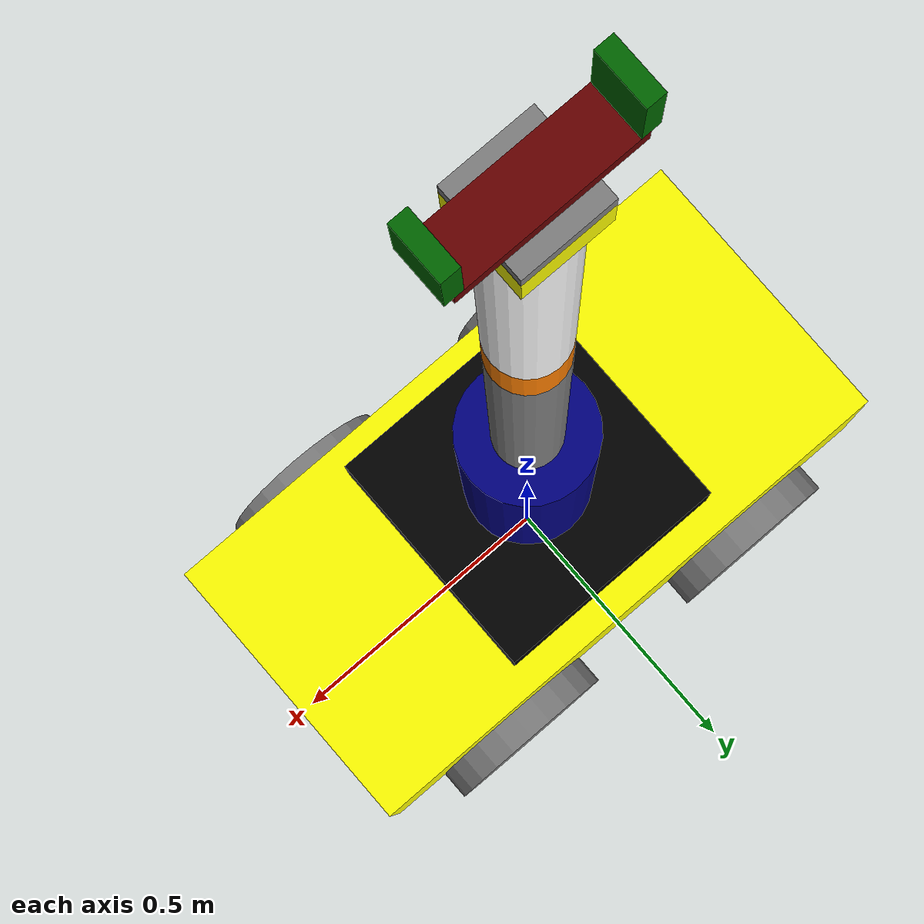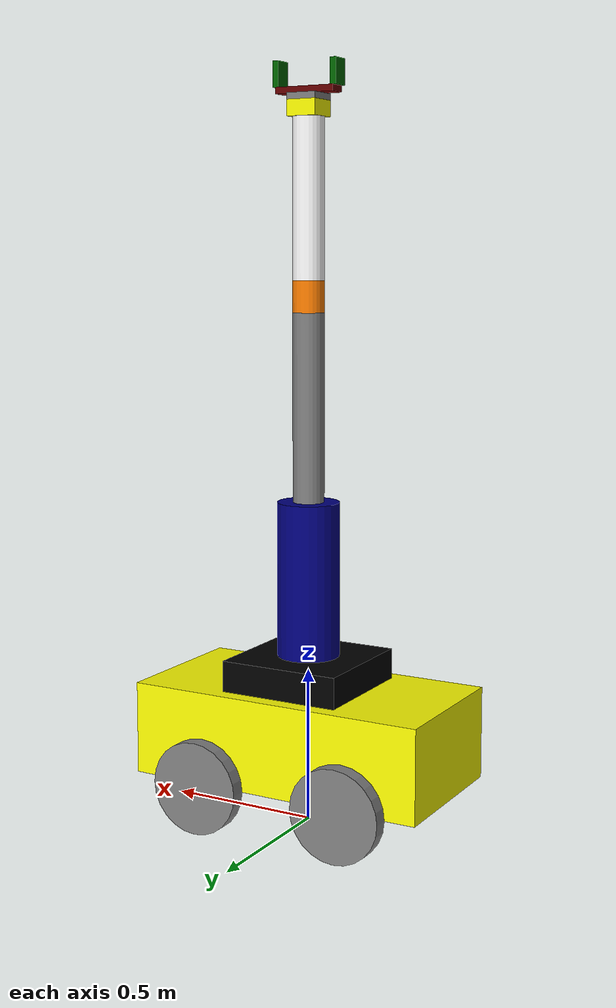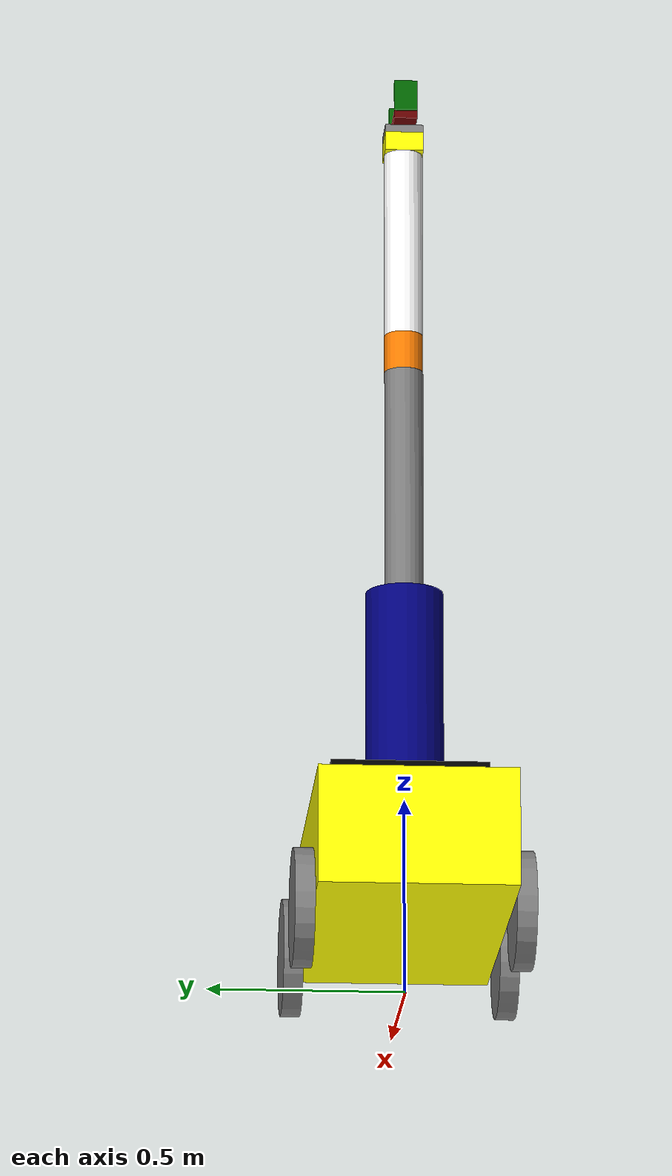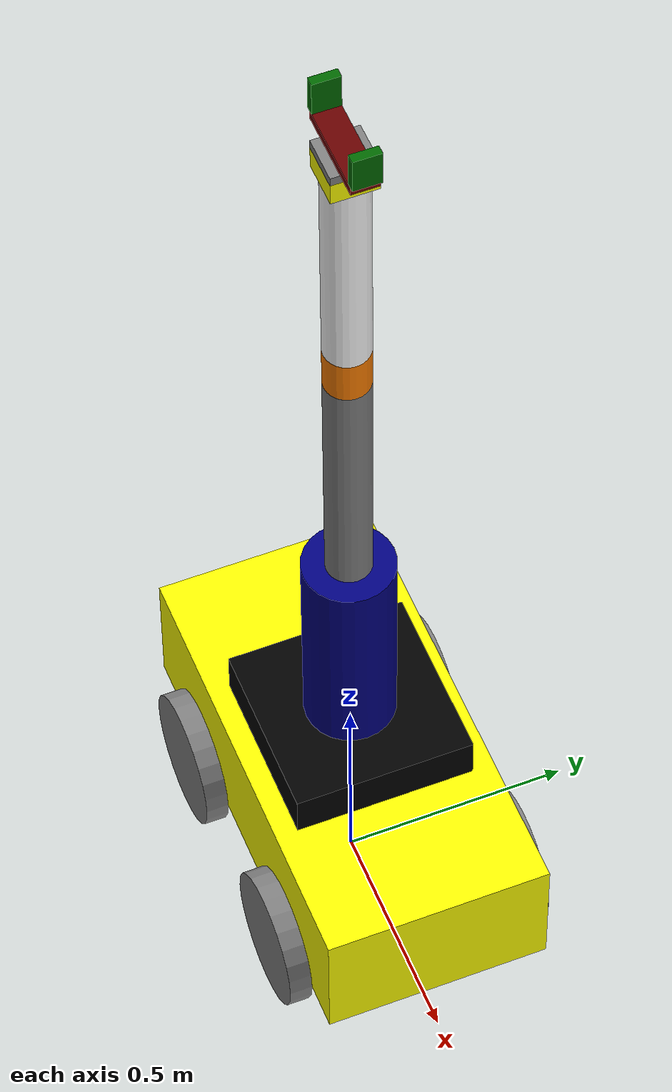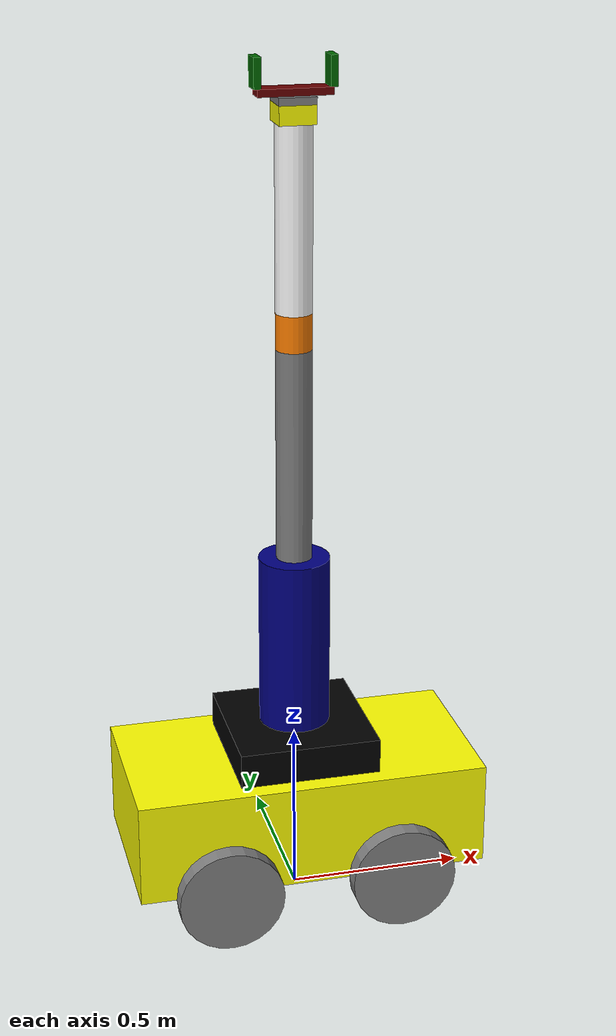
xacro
<?xml version="1.0"?>
<robot xmlns:xacro="http://www.ros.org/wiki/xacro" name="my_platform">
    <xacro:arg name="initial_positions_file" default="initial_positions.yaml" />

    <!-- Import my_platform urdf file -->
    <xacro:include filename="$(find my_robot_description)/urdf/platform.urdf.xacro" />

    <!-- Import control_xacro -->
    <xacro:include filename="my_platform.ros2_control.xacro" />

    <xacro:my_platform_ros2_control name="FakeSystem"
        initial_positions_file="$(arg initial_positions_file)" />

</robot>

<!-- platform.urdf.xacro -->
<robot name="my_platform" xmlns:xacro="http://www.ros.org/wiki/xacro">
    <xacro:include filename="inertia.urdf.xacro" />
    <xacro:include filename="mtl.urdf.xacro" />
    <xacro:include filename="arm.urdf.xacro" />
    <xacro:include filename="gripper.urdf.xacro" />
    <xacro:include filename="mobile_base.urdf.xacro" />

    <!-- Connect the gripper to ef -->
    <joint name="gripper_base_joint" type="fixed">
        <parent link="tool_link" />
        <child link="gripper_base_link" />
        <origin xyz="0 0 0" rpy="0 0 0" />
    </joint>

    <!-- Connect the arm to the base -->
    <joint name="arm_base_joint" type="fixed">
        <parent link="mobile_base_link" />
        <child link="arm_base_link" />
        <origin xyz="0 0 0.3" rpy="0 0 0" />
    </joint>
</robot>

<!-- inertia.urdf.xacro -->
<robot xmlns:xacro="http://www.ros.org/wiki/xacro">

    <xacro:macro name="box_inertia" params="m x y z o_xyz o_rpy">
        <inertial>
            <mass value="${m}" />
            <origin xyz="${o_xyz}" rpy="${o_rpy}" />
            <inertia ixx="${(m/12) * (y*y + z*z)}" ixy="0" ixz="0"
                iyy="${(m/12) * (x*x + z*z)}" iyz="0"
                izz="${(m/12) * (x*x + y*y)}" />
        </inertial>
    </xacro:macro>

    <xacro:macro name="cylinder_inertia" params="m r l o_xyz o_rpy">
        <inertial>
            <mass value="${m}" />
            <origin xyz="${o_xyz}" rpy="${o_rpy}" />
            <inertia ixx="${(m/12) * (3*r*r + l*l)}" ixy="0" ixz="0"
                iyy="${(m/12) * (3*r*r + l*l)}" iyz="0"
                izz="${(m/2) * (r*r)}" />
        </inertial>
    </xacro:macro>

    <xacro:macro name="sphere_inertia" params="m r o_xyz o_rpy">
        <inertial>
            <mass value="${m}" />
            <origin xyz="${o_xyz}" rpy="${o_rpy}" />
            <inertia ixx="${(2/5) * m * r * r}" ixy="0" ixz="0"
                iyy="${(2/5) * m * r * r}" iyz="0"
                izz="${(2/5) * m * r * r}" />
        </inertial>
    </xacro:macro>

</robot>

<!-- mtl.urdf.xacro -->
<robot xmlns:xacro="http://www.ros.org/wiki/xacro">

    <material name="blue">
        <color rgba="0 0 0.5 1" />
    </material>

    <material name="grey">
        <color rgba="0.5 0.5 0.5 1" />
    </material>

    <material name="orange">
        <color rgba="1.0 0.5 0 1" />
    </material>

    <material name="yellow">
        <color rgba="1.0 1.0 0 1" />
    </material>

    <material name="white">
        <color rgba="1.0 1.0 1.0 1" />
    </material>

    <material name="black">
        <color rgba="0.0 0.0 0.0 1" />
    </material>

    <material name="dark_red">
        <color rgba="0.4 0 0 1.0" />
    </material>

    <material name="dark_green">
        <color rgba="0.0 0.4 0 1.0" />
    </material>

</robot>

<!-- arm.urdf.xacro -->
<robot xmlns:xacro="http://www.ros.org/wiki/xacro">

    <!-- Base Link-->
    <link name="arm_base_link">
        <visual>
            <geometry>
                <box size="0.4 0.4 0.1" />
            </geometry>
            <origin xyz="0 0 0.05" rpy="0 0 0" />
            <material name="black" />
        </visual>
        <collision>
            <geometry>
                <box size="0.4 0.4 0.1" />
            </geometry>
            <origin xyz="0 0 0.05" rpy="0 0 0" />
        </collision>
        <xacro:box_inertia m="2.0" x="0.4" y="0.4"
            z="0.1"
            o_xyz="0 0 0.05" o_rpy="0 0 0" />
    </link>

    <!-- Shoulder link -->
    <link name="shoulder_link">
        <visual>
            <geometry>
                <cylinder length="0.5" radius="0.1" />
            </geometry>
            <origin xyz="0 0 0.25" rpy="0 0 0" />
            <material name="blue" />
        </visual>
        <collision>
            <geometry>
                <box size="0.2 0.2 0.5" />
            </geometry>
            <origin xyz="0 0 0.25" rpy="0 0 0" />
        </collision>
        <xacro:cylinder_inertia m="1.0" r="0.1" l="0.5"
            o_xyz="0 0 0.25" o_rpy="0 0 0" />
    </link>
    <joint name="joint1" type="revolute">
        <parent link="arm_base_link" />
        <child link="shoulder_link" />
        <origin xyz="0 0 0.1" rpy="0 0 0" />
        <axis xyz="0 0 1" />
        <limit effort="100" velocity="1.0" lower="-3.14" upper="3.14" />
    </joint>

    <!-- Arm link -->
    <link name="arm_link">
        <visual>
            <geometry>
                <cylinder radius="0.05" length="0.6" />
            </geometry>
            <origin xyz="0 0 0.3" rpy="0 0 0" />
            <material name="grey" />
        </visual>
        <collision>
            <geometry>
                <box size="0.1 0.1 0.6" />
            </geometry>
            <origin xyz="0 0 0.3" rpy="0 0 0" />
        </collision>
        <xacro:cylinder_inertia m="0.5" r="0.05" l="0.6"
            o_xyz="0 0 0.3" o_rpy="0 0 0" />
    </link>
    <joint name="joint2" type="revolute">
        <parent link="shoulder_link" />
        <child link="arm_link" />
        <axis xyz="0 1 0" />
        <origin xyz="0 0 0.5" rpy="0 0 0" />
        <limit effort="100" velocity="1.0" lower="0.0" upper="2.5" />
    </joint>

    <!-- Elbow link -->
    <link name="elbow_link">
        <visual>
            <geometry>
                <cylinder radius="0.05" length="0.1" />
            </geometry>
            <origin xyz="0 0 0.05" rpy="0 0 0" />
            <material name="orange" />
        </visual>
        <collision>
            <geometry>
                <box size="0.1 0.1 0.1" />
            </geometry>
            <origin xyz="0 0 0.05" rpy="0 0 0" />
        </collision>
        <xacro:cylinder_inertia m="0.2" r="0.05" l="0.1"
            o_xyz="0 0 0.05" o_rpy="0 0 0" />
    </link>
    <joint name="joint3" type="revolute">
        <parent link="arm_link" />
        <child link="elbow_link" />
        <axis xyz="0 1 0" />
        <origin xyz="0 0 0.6" rpy="0 0 0" />
        <limit effort="100" velocity="1.0" lower="0.0" upper="2.5" />
    </joint>

    <!-- Forearm link-->
    <link name="forearm_link">
        <visual>
            <geometry>
                <cylinder radius="0.05" length="0.5" />
            </geometry>
            <origin xyz="0 0 0.25" rpy="0 0 0" />
            <material name="white" />
        </visual>
        <collision>
            <geometry>
                <box size="0.1 0.1 0.5" />
            </geometry>
            <origin xyz="0 0 0.25" rpy="0 0 0" />
        </collision>
        <xacro:cylinder_inertia m="0.3" r="0.05" l="0.5"
            o_xyz="0 0 0.25" o_rpy="0 0 0" />
    </link>
    <joint name="joint4" type="revolute">
        <parent link="elbow_link" />
        <child link="forearm_link" />
        <axis xyz="0 0 1" />
        <origin xyz="0 0 0.1" rpy="0 0 0" />
        <limit effort="100" velocity="1.0" lower="-3.14" upper="3.14" />
    </joint>

    <!-- Wrist link -->
    <link name="wrist_link">
        <visual>
            <geometry>
                <box size="0.1 0.1 0.05" />
            </geometry>
            <origin xyz="0 0 0.025" rpy="0 0 0" />
            <material name="yellow" />
        </visual>
        <collision>
            <geometry>
                <box size="0.1 0.1 0.05" />
            </geometry>
            <origin xyz="0 0 0.025" rpy="0 0 0" />
        </collision>
        <xacro:box_inertia m="0.1" x="0.1" y="0.1"
            z="0.05"
            o_xyz="0 0 0.025" o_rpy="0 0 0" />
    </link>
    <joint name="joint5" type="revolute">
        <parent link="forearm_link" />
        <child link="wrist_link" />
        <axis xyz="0 1 0" />
        <origin xyz="0 0 0.5" rpy="0 0 0" />
        <limit effort="100" velocity="1.0" lower="-1.57" upper="1.57" />
    </joint>

    <!-- hand link -->
    <link name="hand_link">
        <visual>
            <geometry>
                <box size="0.1 0.1 0.02" />
            </geometry>
            <origin xyz="0 0 0.01" rpy="0 0 0" />
            <material name="grey" />
        </visual>
        <collision>
            <geometry>
                <box size="0.1 0.1 0.02" />
            </geometry>
            <origin xyz="0 0 0.01" rpy="0 0 0" />
        </collision>
        <xacro:box_inertia m="0.05" x="0.1" y="0.1"
            z="0.02"
            o_xyz="0 0 0.01" o_rpy="0 0 0" />
    </link>
    <joint name="joint6" type="continuous">
        <parent link="wrist_link" />
        <child link="hand_link" />
        <axis xyz="0 0 1" />
        <origin xyz="0 0 0.05" rpy="0 0 0" />
    </joint>

    <!-- Tool link -->
    <link name="tool_link"></link>
    <joint name="hand_tool_joint" type="fixed">
        <parent link="hand_link" />
        <child link="tool_link" />
        <origin xyz="0 0 0.02" rpy="0 0 0" />
    </joint>

</robot>

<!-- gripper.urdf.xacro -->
<robot xmlns:xacro="http://www.ros.org/wiki/xacro">

    <link name="gripper_base_link">
        <visual>
            <origin xyz="0 0 0.01" rpy="0 0 0" />
            <geometry>
                <box size="0.2 0.06 0.02" />
            </geometry>
            <material name="dark_red" />
        </visual>
        <collision>
            <origin xyz="0 0 0.01" rpy="0 0 0" />
            <geometry>
                <box size="0.2 0.06 0.02" />
            </geometry>
        </collision>
    </link>

    <link name="gripper_left_link">
        <visual>
            <origin xyz="0 0 0.04" rpy="0 0 0" />
            <geometry>
                <box size="0.02 0.06 0.08" />
            </geometry>
            <material name="dark_green" />
        </visual>
        <collision>
            <origin xyz="0 0 0.04" rpy="0 0 0" />
            <geometry>
                <box size="0.02 0.06 0.08" />
            </geometry>
        </collision>
        <xacro:box_inertia m="0.1" x="0.02" y="0.06" z="0.08" o_xyz="0 0 0.04" o_rpy="0 0 0" />
    </link>

    <joint name="gripper_left_finger_joint" type="prismatic">
        <parent link="gripper_base_link" />
        <child link="gripper_left_link" />
        <origin xyz="-0.1 0.0 0.02" rpy="0 0 0" />
        <axis xyz="1 0 0" />
        <limit lower="0.0" upper="0.09" effort="1000.0" velocity="1.0" />
    </joint>

    <link name="gripper_right_link">
        <visual>
            <origin xyz="0 0 0.04" rpy="0 0 0" />
            <geometry>
                <box size="0.02 0.06 0.08" />
            </geometry>
            <material name="dark_green" />
        </visual>
        <collision>
            <origin xyz="0 0 0.04" rpy="0 0 0" />
            <geometry>
                <box size="0.02 0.06 0.08" />
            </geometry>
        </collision>
        <xacro:box_inertia m="0.1" x="0.02" y="0.06" z="0.08" o_xyz="0 0 0.04" o_rpy="0 0 0" />
    </link>

    <joint name="gripper_right_finger_joint" type="prismatic">
        <parent link="gripper_base_link" />
        <child link="gripper_right_link" />
        <origin xyz="0.1 0.0 0.02" rpy="0 0 0" />
        <axis xyz="1 0 0" />
        <mimic joint="gripper_left_finger_joint" multiplier="-1.0" />
        <limit lower="-0.09" upper="0.00" effort="1000.0" velocity="1.0" />
    </joint>

</robot>

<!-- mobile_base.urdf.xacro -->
<robot xmlns:xacro="http://www.ros.org/wiki/xacro">

    <xacro:property name="base_length" value="1.0" />
    <xacro:property name="base_width" value="0.5" />
    <xacro:property name="base_height" value="0.3" />
    <xacro:property name="wheel_radius" value="0.15" />
    <xacro:property name="wheel_length" value="0.05" />

    <xacro:macro name="box_inertia" params="m x y z o_xyz o_rpy">
        <inertial>
            <mass value="${m}" />
            <origin xyz="${o_xyz}" rpy="${o_rpy}" />
            <inertia ixx="${(m/12) * (y*y + z*z)}" ixy="0" ixz="0"
                iyy="${(m/12) * (x*x + z*z)}" iyz="0"
                izz="${(m/12) * (x*x + y*y)}" />
        </inertial>
    </xacro:macro>

    <xacro:macro name="cylinder_inertia" params="m r l o_xyz o_rpy">
        <inertial>
            <mass value="${m}" />
            <origin xyz="${o_xyz}" rpy="${o_rpy}" />
            <inertia ixx="${(m/12) * (3*r*r + l*l)}" ixy="0" ixz="0"
                iyy="${(m/12) * (3*r*r + l*l)}" iyz="0"
                izz="${(m/2) * (r*r)}" />
        </inertial>
    </xacro:macro>

    <xacro:macro name="sphere_inertia" params="m r o_xyz o_rpy">
        <inertial>
            <mass value="${m}" />
            <origin xyz="${o_xyz}" rpy="${o_rpy}" />
            <inertia ixx="${(2/5) * m * r * r}" ixy="0" ixz="0"
                iyy="${(2/5) * m * r * r}" iyz="0"
                izz="${(2/5) * m * r * r}" />
        </inertial>
    </xacro:macro>
    <link name="base_footprint" />

    <link name="mobile_base_link">
        <visual>
            <geometry>
                <box size="${base_length} ${base_width} ${base_height}" />
            </geometry>
            <origin xyz="0 0 ${base_height / 2.0}" rpy="0 0 0" />
            <material name="yellow" />
        </visual>
        <collision>
            <geometry>
                <box size="${base_length} ${base_width} ${base_height}" />
            </geometry>
            <origin xyz="0 0 ${base_height / 2.0}" rpy="0 0 0" />
        </collision>
        <xacro:box_inertia m="5.0" x="${base_length}" y="${base_width}" z="${base_height}"
            o_xyz="0 0 ${base_height / 2.0}" o_rpy="0 0 0" />
    </link>

    <xacro:macro name="wheel_link" params="prefix">
        <link name="${prefix}_wheel_link">
            <visual>
                <geometry>
                    <cylinder radius="${wheel_radius}" length="${wheel_length}" />
                </geometry>
                <origin xyz="0 0 0" rpy="${pi / 2.0} 0 0" />
                <material name="grey" />
            </visual>
            <collision>
                <geometry>
                    <sphere radius="${wheel_radius}" />
                </geometry>
                <origin xyz="0 0 0" rpy="0 0 0" />
            </collision>
            <xacro:cylinder_inertia m="1.0" r="${wheel_radius}" l="${wheel_length}"
                o_xyz="0 0 0" o_rpy="${pi / 2.0} 0 0" />
        </link>
    </xacro:macro>

    <xacro:wheel_link prefix="rear_right" />
    <xacro:wheel_link prefix="rear_left" />
    <xacro:wheel_link prefix="front_right" />
    <xacro:wheel_link prefix="front_left" />

    <joint name="base_joint" type="fixed">
        <parent link="base_footprint" />
        <child link="mobile_base_link" />
        <origin xyz="0 0 ${wheel_radius}" rpy="0 0 0" />
    </joint>

    <joint name="base_rear_right_wheel_joint" type="continuous">
        <parent link="mobile_base_link" />
        <child link="rear_right_wheel_link" />
        <origin xyz="${-base_length / 4.0} ${-(base_width + wheel_length) / 2.0} 0" rpy="0 0 0" />
        <axis xyz="0 1 0" />
    </joint>

    <joint name="base_rear_left_wheel_joint" type="continuous">
        <parent link="mobile_base_link" />
        <child link="rear_left_wheel_link" />
        <origin xyz="${-base_length / 4.0} ${(base_width + wheel_length) / 2.0} 0" rpy="0 0 0" />
        <axis xyz="0 1 0" />
    </joint>

    <joint name="base_front_right_wheel_joint" type="continuous">
        <parent link="mobile_base_link" />
        <child link="front_right_wheel_link" />
        <origin xyz="${base_length / 4.0} ${-(base_width + wheel_length) / 2.0} 0" rpy="0 0 0" />
        <axis xyz="0 1 0" />
    </joint>

    <joint name="base_front_left_wheel_joint" type="continuous">
        <parent link="mobile_base_link" />
        <child link="front_left_wheel_link" />
        <origin xyz="${base_length / 4.0} ${(base_width + wheel_length) / 2.0} 0" rpy="0 0 0" />
        <axis xyz="0 1 0" />
    </joint>

</robot>
